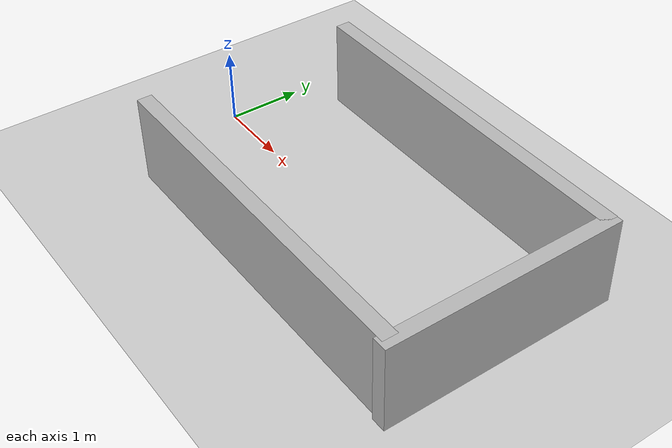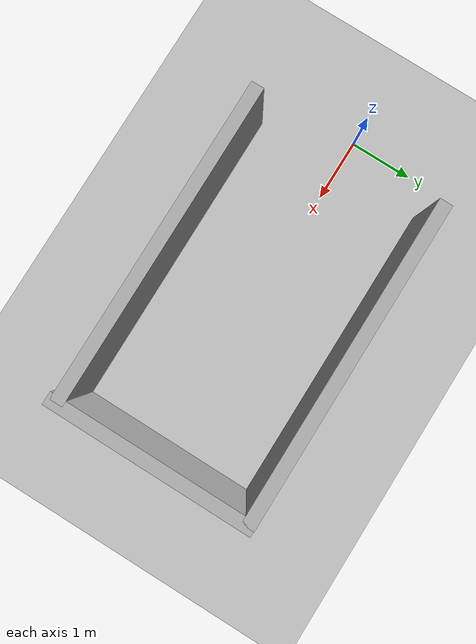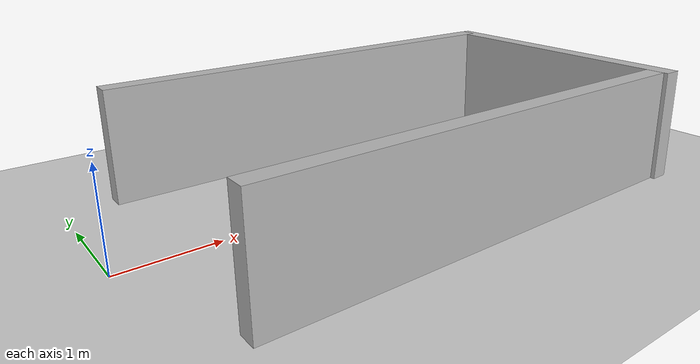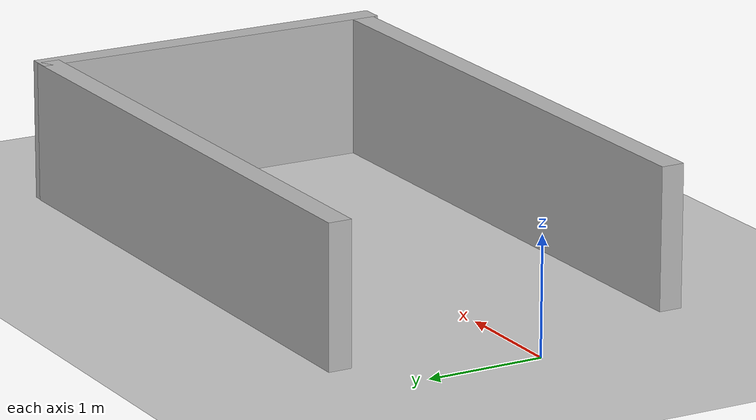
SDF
<?xml version="1.0"?>
<sdf version="1.6">
  <world name="v2-04c-r-maneuver-s4505">
    <gravity>0 0 -9.81</gravity>
    <physics name="v2_deterministic" type="ode">
      <max_step_size>0.002</max_step_size>
      <real_time_update_rate>500</real_time_update_rate>
    </physics>
    <include>
      <uri>model://sun</uri>
    </include>
    <include>
      <uri>model://ground_plane</uri>
    </include>
    <model name="r-bay-left">
      <static>true</static>
      <pose>3.006850735 1.486465936 0.600000000 0 0 -0.000328405</pose>
      <link name="link">
        <collision name="collision">
          <geometry>
            <box>
              <size>5.000000 0.200000 1.200000</size>
            </box>
          </geometry>
        </collision>
        <visual name="visual">
          <geometry>
            <box>
              <size>5.000000 0.200000 1.200000</size>
            </box>
          </geometry>
        </visual>
      </link>
    </model>
    <model name="r-bay-right">
      <static>true</static>
      <pose>2.976112428 -1.480934503 0.600000000 0 0 0.002460162</pose>
      <link name="link">
        <collision name="collision">
          <geometry>
            <box>
              <size>5.000000 0.200000 1.200000</size>
            </box>
          </geometry>
        </collision>
        <visual name="visual">
          <geometry>
            <box>
              <size>5.000000 0.200000 1.200000</size>
            </box>
          </geometry>
        </visual>
      </link>
    </model>
    <model name="r-bay-back">
      <static>true</static>
      <pose>5.487741529 -0.020532630 0.600000000 0 0 -0.001918248</pose>
      <link name="link">
        <collision name="collision">
          <geometry>
            <box>
              <size>0.200000 3.200000 1.200000</size>
            </box>
          </geometry>
        </collision>
        <visual name="visual">
          <geometry>
            <box>
              <size>0.200000 3.200000 1.200000</size>
            </box>
          </geometry>
        </visual>
      </link>
    </model>
  </world>
</sdf>
